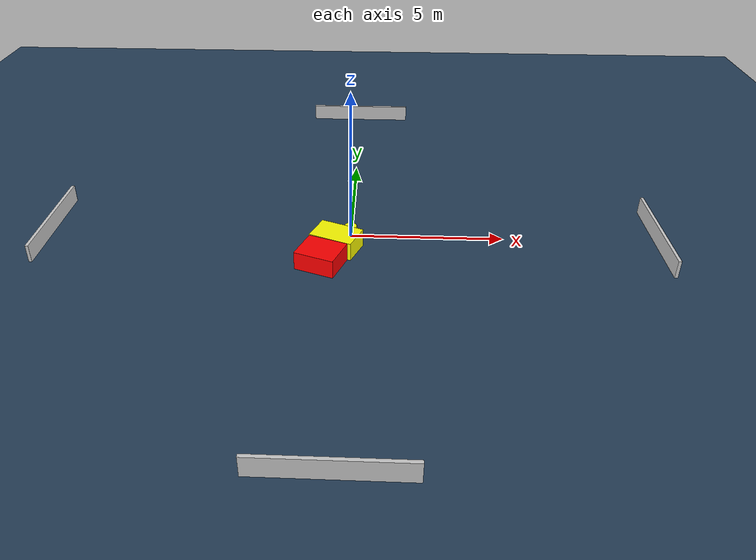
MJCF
<?xml version="1.0" ?>
<mujoco model="generated_environment">
  <option timestep="0.01" integrator="RK4" cone="elliptic"/>
  <default>
    <geom density="1"/>
  </default>
  <asset>
    <texture builtin="gradient" height="3072" name="skybox" rgb1="0.3 0.5 0.7" rgb2="0 0 0" type="skybox" width="512"/>
    <texture builtin="checker" height="300" name="groundplane" rgb1="0.2 0.3 0.4" rgb2="0.1 0.2 0.3" type="2d" width="300"/>
    <material name="groundplane" reflectance="0.2" texrepeat="5 5" texture="groundplane"/>
  </asset>
  <worldbody>
    <light dir="0 0 -1" directional="true" pos="0 0 1.5"/>
    <geom condim="3" friction="0.5 0.005 0.001" material="groundplane" name="floor" pos="0 0 0" size="0 0 0.05" type="plane"/>
    <body name="walls">
      <geom name="wall_1" condim="4" pos="-10.0 0.0 0.3" rgba="0.800000011920929 0.800000011920929 0.800000011920929 1.0" size="0.05 2.0 0.3" type="box"/>
      <geom name="wall_2" condim="4" pos="10.0 0.0 0.3" rgba="0.800000011920929 0.800000011920929 0.800000011920929 1.0" size="0.05 2.0 0.3" type="box"/>
      <geom name="wall_3" condim="4" pos="0.0 -10.0 0.3" rgba="0.800000011920929 0.800000011920929 0.800000011920929 1.0" size="2.0 0.05 0.3" type="box"/>
      <geom name="wall_4" condim="4" pos="0.0 10.0 0.3" rgba="0.800000011920929 0.800000011920929 0.800000011920929 1.0" size="2.0 0.05 0.3" type="box"/>
    </body>
    <body name="robot">
      <joint name="joint_x" type="slide" pos="0 0 0" axis="1 0 0"/>
      <joint name="joint_y" type="slide" pos="0 0 0" axis="0 1 0"/>
      <geom name="robot" type="cylinder" pos="0.0 0.0 0.2" size="0.2 0.2 0.0" mass="5.0" friction="1.0 0.005 0.0001" condim="4" rgba="1.0 1.0 0.0 1.0"/>
    </body>
    <body name="obstacle_1_movable">
      <geom name="obstacle_1_movable" condim="4" pos="-0.4345655723064888 -0.7424272512527963 0.3" euler="0 0 247.63368034918142" friction="0.0 0.005 0.001" rgba="1.0 1.0 0.0 1.0" size="0.49102301705917334 0.7289309466190992 0.3" type="box" mass="0.1"/>
      <joint type="free"/>
    </body>
    <body name="obstacle_2_static">
      <geom name="obstacle_2_static" condim="4" pos="-0.8584957549998744 -1.7288296592936254 0.3" euler="0 0 339.096620061796" friction="0.0 0.005 0.001" rgba="1.0 0.0 0.0 1.0" size="0.6572367142984353 0.5560284225516015 0.3" type="box"/>
    </body>
  </worldbody>
  <actuator>
    <motor name="actuator_x" joint="joint_x" gear="1" ctrlrange="-1 1"/>
    <motor name="actuator_y" joint="joint_y" gear="1" ctrlrange="-1 1"/>
  </actuator>
</mujoco>
